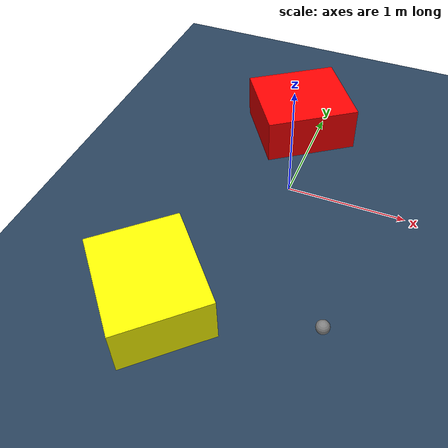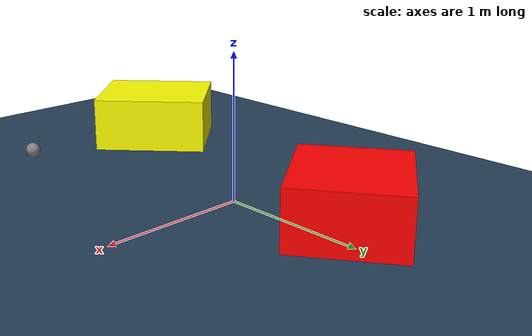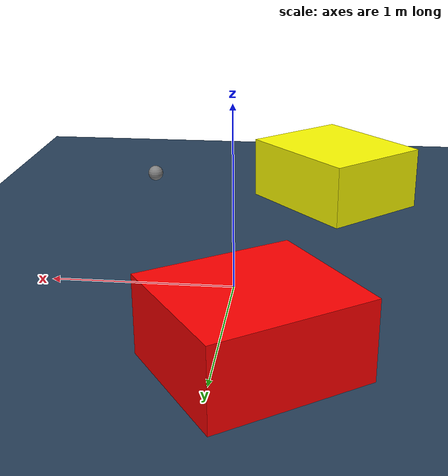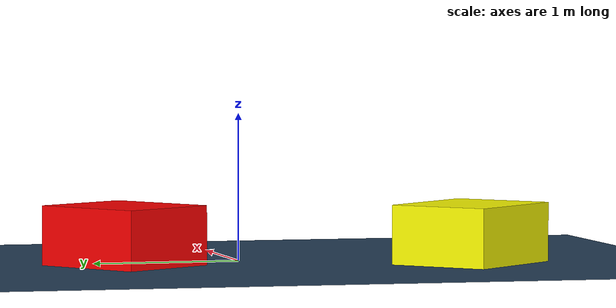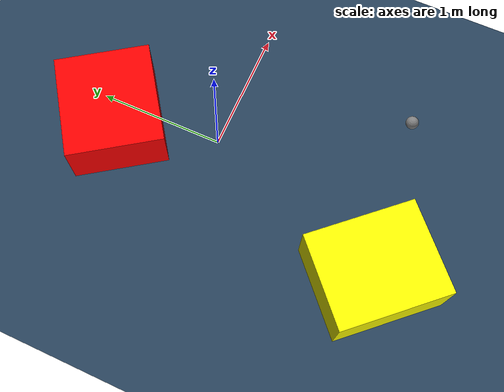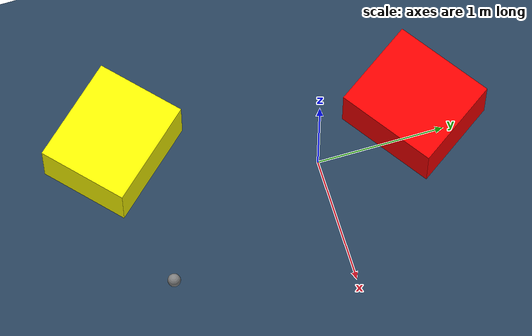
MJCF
<?xml version="1.0" ?>
<mujoco model="generated_environment">
  <option timestep="0.01" integrator="RK4" cone="elliptic"/>
  <default>
    <geom density="1"/>
  </default>
  <asset>
    <texture builtin="gradient" height="3072" rgb1="0.3 0.5 0.7" rgb2="0 0 0" type="skybox" width="512"/>
    <texture builtin="checker" height="300" mark="edge" markrgb="0.8 0.8 0.8" name="groundplane" rgb1="0.2 0.3 0.4" rgb2="0.1 0.2 0.3" type="2d" width="300"/>
    <material name="groundplane" reflectance="0.2" texrepeat="5 5" texture="groundplane" texuniform="true"/>
    <material name="robot" rgba="0.0 1.0 0.0 1"/>
  </asset>
  <worldbody>
    <light dir="0 0 -1" directional="true" pos="0 0 1.5"/>
    <geom condim="4" friction="1.0 0.005 0.001" material="groundplane" name="floor" size="0 0 0.05" type="plane"/>
    <body name="walls"/>
    <body name="robot">
      <joint name="joint_x" type="slide" pos="0 0 0" axis="1 0 0"/>
      <joint name="joint_y" type="slide" pos="0 0 0" axis="0 1 0"/>
      <geom name="robot" type="sphere" pos="0.6893348138049928 -1.3388192650187385 0.2" size="0.05" mass="5." friction="1.0 0.005 0.0001" condim="4"/>
      <site name="sensor_ball"/>
    </body>
    <body name="obstacle_1_movable">
      <geom name="obstacle_1_movable" condim="4" pos="-0.5307288562873653 -1.475700975732397 0.2" euler="0 0 132.4632067497778" friction="1.0 0.005 0.001" rgba="1 1 0 1" size="0.4241603862739395 0.35676290885738104 0.2" type="box" mass="0.1"/>
      <joint type="free"/>
    </body>
    <body name="obstacle_2_static">
      <geom name="obstacle_2_static" condim="4" pos="-0.17255353285512642 0.8203510438069939 0.2" euler="0 0 124.96685513973611" friction="1.0 0.005 0.001" rgba="1 0 0 1" size="0.3678054184573406 0.40710384254108933 0.2" type="box"/>
    </body>
  </worldbody>
  <actuator>
    <motor name="actuator_x" joint="joint_x" gear="1" ctrlrange="-1 1"/>
    <motor name="actuator_y" joint="joint_y" gear="1" ctrlrange="-1 1"/>
  </actuator>
</mujoco>
